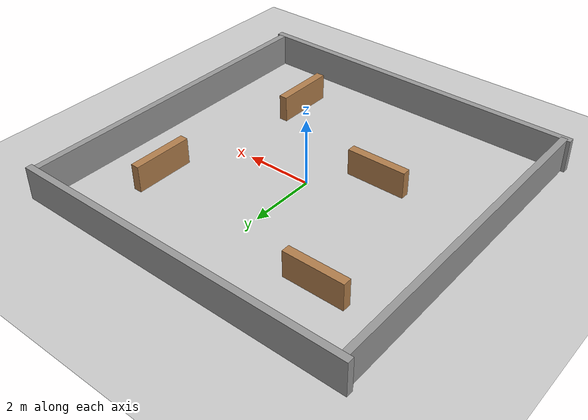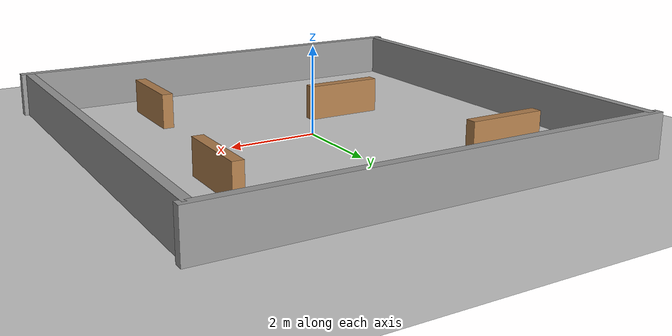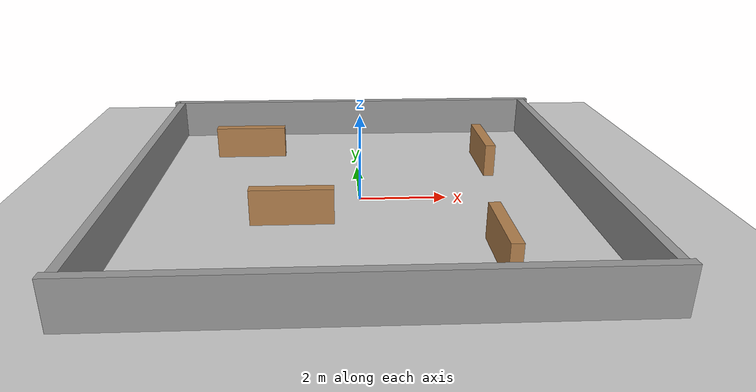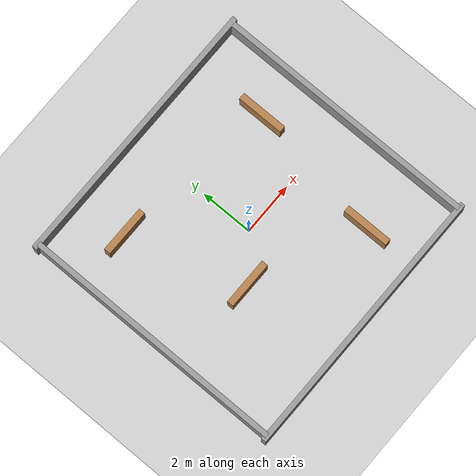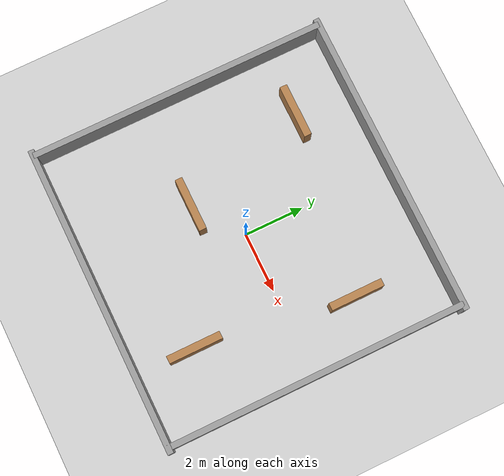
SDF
<sdf version="1.6">
 <world name="warehouse">
  <light name="sun" type="directional">
   <pose>0 0 10 0 -0 0</pose>
   <diffuse>0.8 0.8 0.8 1</diffuse>
   <specular>0.1 0.1 0.1 1</specular>
   <attenuation>
    <range>1000</range>
    <constant>0.9</constant>
    <linear>0.01</linear>
    <quadratic>0.001</quadratic>
   </attenuation>
   <direction>-0.5 0.5 -1</direction>
  </light>
  <model name="ground_plane">
   <static>1</static>
   <link name="link">
    <collision name="collision">
     <geometry><plane><normal>0 0 1</normal><size>100 100</size></plane></geometry>
     <surface><friction><ode><mu>100</mu><mu2>50</mu2></ode></friction></surface>
    </collision>
    <visual name="visual">
     <cast_shadows>0</cast_shadows>
     <geometry><plane><normal>0 0 1</normal><size>100 100</size></plane></geometry>
     <material>
      <script><uri>file://media/materials/scripts/gazebo.material</uri><name>Gazebo/Grey</name></script>
     </material>
    </visual>
   </link>
  </model>
  <gravity>0 0 -9.8</gravity>
  <physics name="default_physics" default="0" type="ode">
   <max_step_size>0.001</max_step_size>
   <real_time_factor>1</real_time_factor>
   <real_time_update_rate>1000</real_time_update_rate>
  </physics>
  <scene><ambient>0.4 0.4 0.4 1</ambient><background>0.7 0.7 0.7 1</background><shadows>1</shadows></scene>
  <model name="warehouse_walls">
   <static>1</static>
   <link name="wall_north">
    <pose>0 5.0 0 0 0 0</pose>
    <collision name="col">
     <pose>0 0 0.5 0 0 0</pose>
     <geometry><box><size>10.4 0.2 1.0</size></box></geometry>
    </collision>
    <visual name="vis">
     <pose>0 0 0.5 0 0 0</pose>
     <geometry><box><size>10.4 0.2 1.0</size></box></geometry>
     <material>
      <script><uri>file://media/materials/scripts/gazebo.material</uri><name>Gazebo/Grey</name></script>
     </material>
    </visual>
   </link>
   <link name="wall_south">
    <pose>0 -5.0 0 0 0 0</pose>
    <collision name="col">
     <pose>0 0 0.5 0 0 0</pose>
     <geometry><box><size>10.4 0.2 1.0</size></box></geometry>
    </collision>
    <visual name="vis">
     <pose>0 0 0.5 0 0 0</pose>
     <geometry><box><size>10.4 0.2 1.0</size></box></geometry>
     <material>
      <script><uri>file://media/materials/scripts/gazebo.material</uri><name>Gazebo/Grey</name></script>
     </material>
    </visual>
   </link>
   <link name="wall_east">
    <pose>5.0 0 0 0 0 0</pose>
    <collision name="col">
     <pose>0 0 0.5 0 0 0</pose>
     <geometry><box><size>0.2 10.0 1.0</size></box></geometry>
    </collision>
    <visual name="vis">
     <pose>0 0 0.5 0 0 0</pose>
     <geometry><box><size>0.2 10.0 1.0</size></box></geometry>
     <material>
      <script><uri>file://media/materials/scripts/gazebo.material</uri><name>Gazebo/Grey</name></script>
     </material>
    </visual>
   </link>
   <link name="wall_west">
    <pose>-5.0 0 0 0 0 0</pose>
    <collision name="col">
     <pose>0 0 0.5 0 0 0</pose>
     <geometry><box><size>0.2 10.0 1.0</size></box></geometry>
    </collision>
    <visual name="vis">
     <pose>0 0 0.5 0 0 0</pose>
     <geometry><box><size>0.2 10.0 1.0</size></box></geometry>
     <material>
      <script><uri>file://media/materials/scripts/gazebo.material</uri><name>Gazebo/Grey</name></script>
     </material>
    </visual>
   </link>
  </model>
  <model name="shelf_a">
   <static>1</static>
   <pose>-2.8 3.1 0 0 0 0</pose>
   <link name="link">
    <collision name="col">
     <pose>0 0 0.4 0 0 0</pose>
     <geometry><box><size>1.8 0.25 0.8</size></box></geometry>
    </collision>
    <visual name="vis">
     <pose>0 0 0.4 0 0 0</pose>
     <geometry><box><size>1.8 0.25 0.8</size></box></geometry>
     <material>
      <script><uri>file://media/materials/scripts/gazebo.material</uri><name>Gazebo/WoodFloor</name></script>
     </material>
    </visual>
   </link>
  </model>
  <model name="shelf_b">
   <static>1</static>
   <pose>3.3 2.2 0 0 0 1.5708</pose>
   <link name="link">
    <collision name="col">
     <pose>0 0 0.4 0 0 0</pose>
     <geometry><box><size>1.8 0.25 0.8</size></box></geometry>
    </collision>
    <visual name="vis">
     <pose>0 0 0.4 0 0 0</pose>
     <geometry><box><size>1.8 0.25 0.8</size></box></geometry>
     <material>
      <script><uri>file://media/materials/scripts/gazebo.material</uri><name>Gazebo/WoodFloor</name></script>
     </material>
    </visual>
   </link>
  </model>
  <model name="shelf_c">
   <static>1</static>
   <pose>-1.5 -1.2 0 0 0 0</pose>
   <link name="link">
    <collision name="col">
     <pose>0 0 0.4 0 0 0</pose>
     <geometry><box><size>1.8 0.25 0.8</size></box></geometry>
    </collision>
    <visual name="vis">
     <pose>0 0 0.4 0 0 0</pose>
     <geometry><box><size>1.8 0.25 0.8</size></box></geometry>
     <material>
      <script><uri>file://media/materials/scripts/gazebo.material</uri><name>Gazebo/WoodFloor</name></script>
     </material>
    </visual>
   </link>
  </model>
  <model name="shelf_d">
   <static>1</static>
   <pose>2.6 -3.0 0 0 0 1.5708</pose>
   <link name="link">
    <collision name="col">
     <pose>0 0 0.4 0 0 0</pose>
     <geometry><box><size>1.8 0.25 0.8</size></box></geometry>
    </collision>
    <visual name="vis">
     <pose>0 0 0.4 0 0 0</pose>
     <geometry><box><size>1.8 0.25 0.8</size></box></geometry>
     <material>
      <script><uri>file://media/materials/scripts/gazebo.material</uri><name>Gazebo/WoodFloor</name></script>
     </material>
    </visual>
   </link>
  </model>
 </world>
</sdf>
